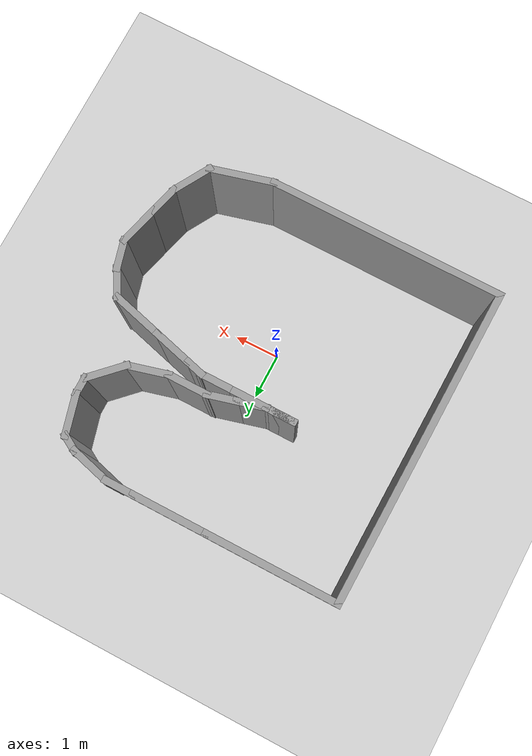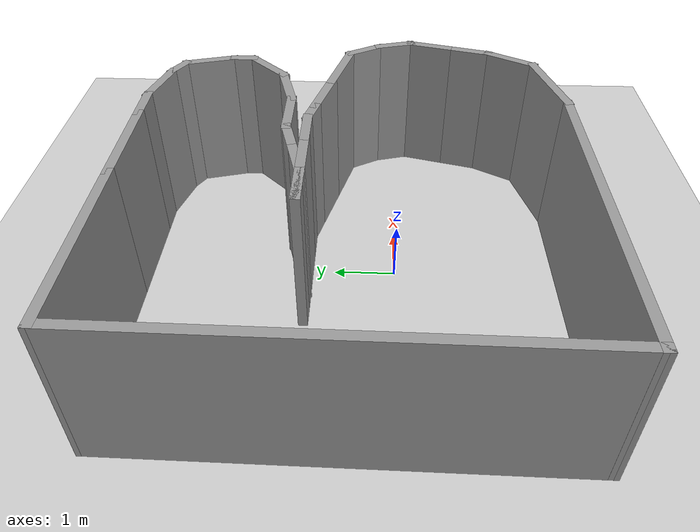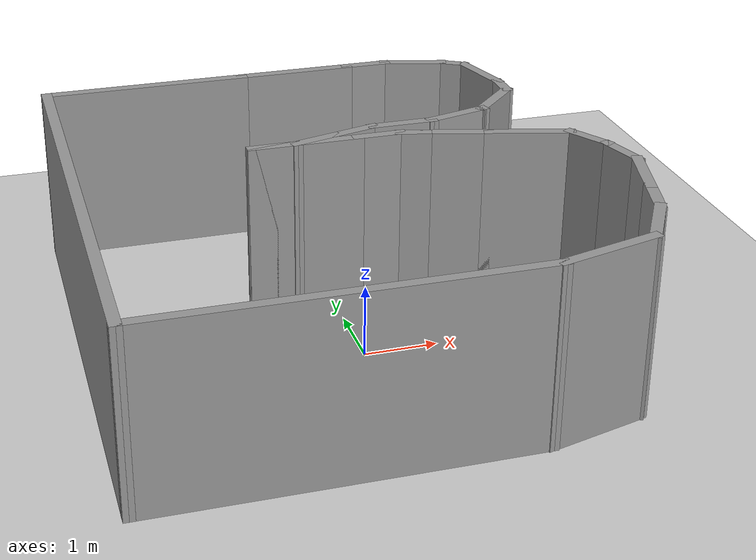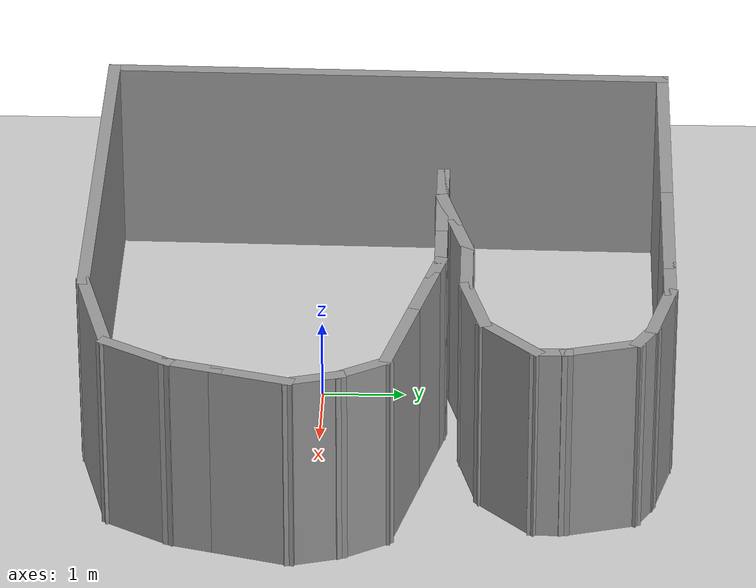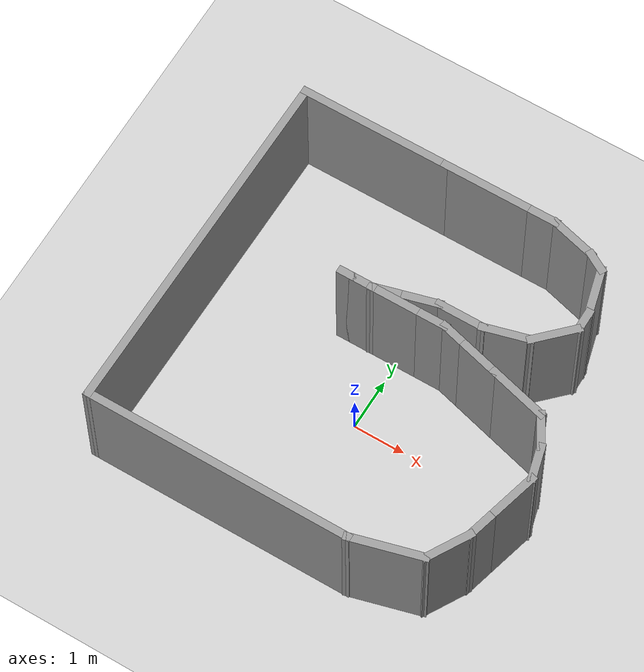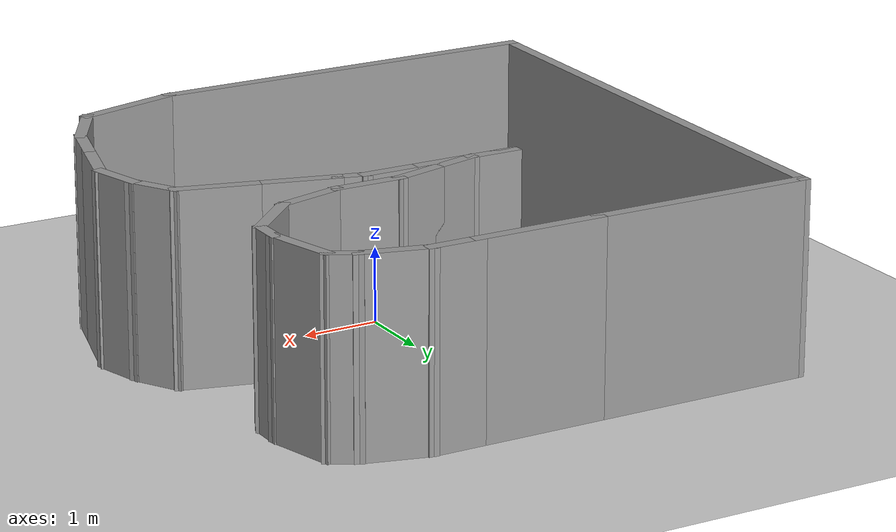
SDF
<sdf version="1.6">
 <world name="default">
  <light name="sun" type="directional">
   <pose>0 0 10 0 -0 0</pose>
   <diffuse>0.8 0.8 0.8 1</diffuse>
   <specular>0.2 0.2 0.2 1</specular>
   <attenuation>
    <range>1000</range>
    <constant>0.9</constant>
    <linear>0.01</linear>
    <quadratic>0.001</quadratic>
   </attenuation>
   <direction>-0.5 0.1 -0.9</direction>
  </light>
  <model name="ground_plane">
   <static>1</static>
   <link name="link">
    <collision name="collision">
     <geometry><plane><normal>0 0 1</normal><size>100 100</size></plane></geometry>
     <surface>
      <contact><collide_bitmask>65535</collide_bitmask></contact>
      <friction><ode><mu>100</mu><mu2>50</mu2></ode></friction>
     </surface>
    </collision>
    <visual name="visual">
     <cast_shadows>0</cast_shadows>
     <geometry><plane><normal>0 0 1</normal><size>100 100</size></plane></geometry>
     <material>
      <script><uri>file://media/materials/scripts/gazebo.material</uri><name>Gazebo/Grey</name></script>
     </material>
    </visual>
   </link>
  </model>
  <gravity>0 0 -9.8</gravity>
  <magnetic_field>6e-06 2.3e-05 -4.2e-05</magnetic_field>
  <atmosphere type="adiabatic"/>
  <physics name="default_physics" default="0" type="ode">
   <max_step_size>0.001</max_step_size>
   <real_time_factor>1</real_time_factor>
   <real_time_update_rate>1000</real_time_update_rate>
  </physics>
  <scene><ambient>0.4 0.4 0.4 1</ambient><background>0.7 0.7 0.7 1</background><shadows>1</shadows></scene>
  <audio><device>default</device></audio>
  <spherical_coordinates>
   <surface_model>EARTH_WGS84</surface_model>
   <latitude_deg>0</latitude_deg>
   <longitude_deg>0</longitude_deg>
   <elevation>0</elevation>
   <heading_deg>0</heading_deg>
  </spherical_coordinates>
  <model name="B">
   <pose>0.001135 0.699269 0 0 -0 0</pose>
   <link name="Wall_1">
    <collision name="Wall_1_Collision">
     <geometry><box><size>5.25 0.15 2.5</size></box></geometry>
     <pose>0 0 1.25 0 -0 0</pose>
    </collision>
    <visual name="Wall_1_Visual">
     <pose>0 0 1.25 0 -0 0</pose>
     <geometry><box><size>5.25 0.15 2.5</size></box></geometry>
     <material>
      <script><uri>file://media/materials/scripts/gazebo.material</uri><name>Gazebo/Grey</name></script>
      <ambient>1 1 1 1</ambient>
     </material>
     <meta><layer>0</layer></meta>
    </visual>
    <pose>-1.05995 -3.43911 0 0 -0 0</pose>
   </link>
   <link name="Wall_10">
    <collision name="Wall_10_Collision">
     <geometry><box><size>0.5 0.15 2.5</size></box></geometry>
     <pose>0 0 1.25 0 -0 0</pose>
    </collision>
    <visual name="Wall_10_Visual">
     <pose>0 0 1.25 0 -0 0</pose>
     <geometry><box><size>0.5 0.15 2.5</size></box></geometry>
     <material>
      <script><uri>file://media/materials/scripts/gazebo.material</uri><name>Gazebo/Grey</name></script>
      <ambient>1 1 1 1</ambient>
     </material>
     <meta><layer>0</layer></meta>
    </visual>
    <pose>1.08645 0.696167 0 0 -0 2.87979</pose>
   </link>
   <link name="Wall_11">
    <collision name="Wall_11_Collision">
     <geometry><box><size>0.75 0.15 2.5</size></box></geometry>
     <pose>0 0 1.25 0 -0 0</pose>
    </collision>
    <visual name="Wall_11_Visual">
     <pose>0 0 1.25 0 -0 0</pose>
     <geometry><box><size>0.75 0.15 2.5</size></box></geometry>
     <material>
      <script><uri>file://media/materials/scripts/gazebo.material</uri><name>Gazebo/Grey</name></script>
      <ambient>1 1 1 1</ambient>
     </material>
     <meta><layer>0</layer></meta>
    </visual>
    <pose>0.617414 0.741461 0 0 -0 3.14159</pose>
   </link>
   <link name="Wall_12">
    <collision name="Wall_12_Collision">
     <geometry><box><size>1 0.15 2.5</size></box></geometry>
     <pose>0 0 1.25 0 -0 0</pose>
    </collision>
    <visual name="Wall_12_Visual">
     <pose>0 0 1.25 0 -0 0</pose>
     <geometry><box><size>1 0.15 2.5</size></box></geometry>
     <material>
      <script><uri>file://media/materials/scripts/gazebo.material</uri><name>Gazebo/Grey</name></script>
      <ambient>1 1 1 1</ambient>
     </material>
     <meta><layer>0</layer></meta>
    </visual>
    <pose>-0.107586 0.741461 0 0 -0 3.14159</pose>
   </link>
   <link name="Wall_13">
    <collision name="Wall_13_Collision">
     <geometry><box><size>0.75 0.15 2.5</size></box></geometry>
     <pose>0 0 1.25 0 -0 0</pose>
    </collision>
    <visual name="Wall_13_Visual">
     <pose>0 0 1.25 0 -0 0</pose>
     <geometry><box><size>0.75 0.15 2.5</size></box></geometry>
     <material>
      <script><uri>file://media/materials/scripts/gazebo.material</uri><name>Gazebo/Grey</name></script>
      <ambient>1 1 1 1</ambient>
     </material>
     <meta><layer>0</layer></meta>
    </visual>
    <pose>-0.832587 0.741461 0 0 -0 3.14159</pose>
   </link>
   <link name="Wall_14">
    <collision name="Wall_14_Collision">
     <geometry><box><size>0.75 0.15 2.5</size></box></geometry>
     <pose>0 0 1.25 0 -0 0</pose>
    </collision>
    <visual name="Wall_14_Visual">
     <pose>0 0 1.25 0 -0 0</pose>
     <geometry><box><size>0.75 0.15 2.5</size></box></geometry>
     <material>
      <script><uri>file://media/materials/scripts/gazebo.material</uri><name>Gazebo/Grey</name></script>
      <ambient>1 1 1 1</ambient>
     </material>
     <meta><layer>0</layer></meta>
    </visual>
    <pose>-0.832587 0.741461 0 0 -0 0</pose>
   </link>
   <link name="Wall_15">
    <collision name="Wall_15_Collision">
     <geometry><box><size>0.75 0.15 2.5</size></box></geometry>
     <pose>0 0 1.25 0 -0 0</pose>
    </collision>
    <visual name="Wall_15_Visual">
     <pose>0 0 1.25 0 -0 0</pose>
     <geometry><box><size>0.75 0.15 2.5</size></box></geometry>
     <material>
      <script><uri>file://media/materials/scripts/gazebo.material</uri><name>Gazebo/Grey</name></script>
      <ambient>1 1 1 1</ambient>
     </material>
     <meta><layer>0</layer></meta>
    </visual>
    <pose>-0.242808 0.819106 0 0 -0 0.261799</pose>
   </link>
   <link name="Wall_16">
    <collision name="Wall_16_Collision">
     <geometry><box><size>0.75 0.15 2.5</size></box></geometry>
     <pose>0 0 1.25 0 -0 0</pose>
    </collision>
    <visual name="Wall_16_Visual">
     <pose>0 0 1.25 0 -0 0</pose>
     <geometry><box><size>0.75 0.15 2.5</size></box></geometry>
     <material>
      <script><uri>file://media/materials/scripts/gazebo.material</uri><name>Gazebo/Grey</name></script>
      <ambient>1 1 1 1</ambient>
     </material>
     <meta><layer>0</layer></meta>
    </visual>
    <pose>0.336748 0.974398 0 0 -0 0.261799</pose>
   </link>
   <link name="Wall_17">
    <collision name="Wall_17_Collision">
     <geometry><box><size>1 0.15 2.5</size></box></geometry>
     <pose>0 0 1.25 0 -0 0</pose>
    </collision>
    <visual name="Wall_17_Visual">
     <pose>0 0 1.25 0 -0 0</pose>
     <geometry><box><size>1 0.15 2.5</size></box></geometry>
     <material>
      <script><uri>file://media/materials/scripts/gazebo.material</uri><name>Gazebo/Grey</name></script>
      <ambient>1 1 1 1</ambient>
     </material>
     <meta><layer>0</layer></meta>
    </visual>
    <pose>1.05153 1.05204 0 0 -0 0</pose>
   </link>
   <link name="Wall_18">
    <collision name="Wall_18_Collision">
     <geometry><box><size>1 0.15 2.5</size></box></geometry>
     <pose>0 0 1.25 0 -0 0</pose>
    </collision>
    <visual name="Wall_18_Visual">
     <pose>0 0 1.25 0 -0 0</pose>
     <geometry><box><size>1 0.15 2.5</size></box></geometry>
     <material>
      <script><uri>file://media/materials/scripts/gazebo.material</uri><name>Gazebo/Grey</name></script>
      <ambient>1 1 1 1</ambient>
     </material>
     <meta><layer>0</layer></meta>
    </visual>
    <pose>1.88704 1.16204 0 0 -0 0.261799</pose>
   </link>
   <link name="Wall_19">
    <collision name="Wall_19_Collision">
     <geometry><box><size>1 0.15 2.5</size></box></geometry>
     <pose>0 0 1.25 0 -0 0</pose>
    </collision>
    <visual name="Wall_19_Visual">
     <pose>0 0 1.25 0 -0 0</pose>
     <geometry><box><size>1 0.15 2.5</size></box></geometry>
     <material>
      <script><uri>file://media/materials/scripts/gazebo.material</uri><name>Gazebo/Grey</name></script>
      <ambient>1 1 1 1</ambient>
     </material>
     <meta><layer>0</layer></meta>
    </visual>
    <pose>2.59808 1.57256 0 0 -0 0.785398</pose>
   </link>
   <link name="Wall_2">
    <collision name="Wall_2_Collision">
     <geometry><box><size>1.5 0.15 2.5</size></box></geometry>
     <pose>0 0 1.25 0 -0 0</pose>
    </collision>
    <visual name="Wall_2_Visual">
     <pose>0 0 1.25 0 -0 0</pose>
     <geometry><box><size>1.5 0.15 2.5</size></box></geometry>
     <material>
      <script><uri>file://media/materials/scripts/gazebo.material</uri><name>Gazebo/Grey</name></script>
      <ambient>1 1 1 1</ambient>
     </material>
     <meta><layer>0</layer></meta>
    </visual>
    <pose>2.14205 -3.26441 0 0 -0 0.261799</pose>
   </link>
   <link name="Wall_20">
    <collision name="Wall_20_Collision">
     <geometry><box><size>0.5 0.15 2.5</size></box></geometry>
     <pose>0 0 1.25 0 -0 0</pose>
    </collision>
    <visual name="Wall_20_Visual">
     <pose>0 0 1.25 0 -0 0</pose>
     <geometry><box><size>0.5 0.15 2.5</size></box></geometry>
     <material>
      <script><uri>file://media/materials/scripts/gazebo.material</uri><name>Gazebo/Grey</name></script>
      <ambient>1 1 1 1</ambient>
     </material>
     <meta><layer>0</layer></meta>
    </visual>
    <pose>2.8986 2.04808 0 0 -0 1.5708</pose>
   </link>
   <link name="Wall_21">
    <collision name="Wall_21_Collision">
     <geometry><box><size>1 0.15 2.5</size></box></geometry>
     <pose>0 0 1.25 0 -0 0</pose>
    </collision>
    <visual name="Wall_21_Visual">
     <pose>0 0 1.25 0 -0 0</pose>
     <geometry><box><size>1 0.15 2.5</size></box></geometry>
     <material>
      <script><uri>file://media/materials/scripts/gazebo.material</uri><name>Gazebo/Grey</name></script>
      <ambient>1 1 1 1</ambient>
     </material>
     <meta><layer>0</layer></meta>
    </visual>
    <pose>2.7886 2.6336 0 0 -0 1.8326</pose>
   </link>
   <link name="Wall_22">
    <collision name="Wall_22_Collision">
     <geometry><box><size>0.5 0.15 2.5</size></box></geometry>
     <pose>0 0 1.25 0 -0 0</pose>
    </collision>
    <visual name="Wall_22_Visual">
     <pose>0 0 1.25 0 -0 0</pose>
     <geometry><box><size>0.5 0.15 2.5</size></box></geometry>
     <material>
      <script><uri>file://media/materials/scripts/gazebo.material</uri><name>Gazebo/Grey</name></script>
      <ambient>1 1 1 1</ambient>
     </material>
     <meta><layer>0</layer></meta>
    </visual>
    <pose>2.52705 3.13162 0 0 -0 2.61799</pose>
   </link>
   <link name="Wall_23">
    <collision name="Wall_23_Collision">
     <geometry><box><size>1 0.15 2.5</size></box></geometry>
     <pose>0 0 1.25 0 -0 0</pose>
    </collision>
    <visual name="Wall_23_Visual">
     <pose>0 0 1.25 0 -0 0</pose>
     <geometry><box><size>1 0.15 2.5</size></box></geometry>
     <material>
      <script><uri>file://media/materials/scripts/gazebo.material</uri><name>Gazebo/Grey</name></script>
      <ambient>1 1 1 1</ambient>
     </material>
     <meta><layer>0</layer></meta>
    </visual>
    <pose>1.96498 3.32912 0 0 -0 2.87979</pose>
   </link>
   <link name="Wall_24">
    <collision name="Wall_24_Collision">
     <geometry><box><size>0.75 0.15 2.5</size></box></geometry>
     <pose>0 0 1.25 0 -0 0</pose>
    </collision>
    <visual name="Wall_24_Visual">
     <pose>0 0 1.25 0 -0 0</pose>
     <geometry><box><size>0.75 0.15 2.5</size></box></geometry>
     <material>
      <script><uri>file://media/materials/scripts/gazebo.material</uri><name>Gazebo/Grey</name></script>
      <ambient>1 1 1 1</ambient>
     </material>
     <meta><layer>0</layer></meta>
    </visual>
    <pose>1.25446 3.43911 0 0 -0 3.14159</pose>
   </link>
   <link name="Wall_25">
    <collision name="Wall_25_Collision">
     <geometry><box><size>1.75 0.15 2.5</size></box></geometry>
     <pose>0 0 1.25 0 -0 0</pose>
    </collision>
    <visual name="Wall_25_Visual">
     <pose>0 0 1.25 0 -0 0</pose>
     <geometry><box><size>1.75 0.15 2.5</size></box></geometry>
     <material>
      <script><uri>file://media/materials/scripts/gazebo.material</uri><name>Gazebo/Grey</name></script>
      <ambient>1 1 1 1</ambient>
     </material>
     <meta><layer>0</layer></meta>
    </visual>
    <pose>0.15446 3.43911 0 0 -0 3.14159</pose>
   </link>
   <link name="Wall_26">
    <collision name="Wall_26_Collision">
     <geometry><box><size>3 0.15 2.5</size></box></geometry>
     <pose>0 0 1.25 0 -0 0</pose>
    </collision>
    <visual name="Wall_26_Visual">
     <pose>0 0 1.25 0 -0 0</pose>
     <geometry><box><size>3 0.15 2.5</size></box></geometry>
     <material>
      <script><uri>file://media/materials/scripts/gazebo.material</uri><name>Gazebo/Grey</name></script>
      <ambient>1 1 1 1</ambient>
     </material>
     <meta><layer>0</layer></meta>
    </visual>
    <pose>-2.07054 3.43911 0 0 -0 3.14159</pose>
   </link>
   <link name="Wall_27">
    <collision name="Wall_27_Collision">
     <geometry><box><size>7.02918 0.15 2.5</size></box></geometry>
     <pose>0 0 1.25 0 -0 0</pose>
    </collision>
    <visual name="Wall_27_Visual">
     <pose>0 0 1.25 0 -0 0</pose>
     <geometry><box><size>7.02918 0.15 2.5</size></box></geometry>
     <material>
      <script><uri>file://media/materials/scripts/gazebo.material</uri><name>Gazebo/Grey</name></script>
      <ambient>1 1 1 1</ambient>
     </material>
     <meta><layer>0</layer></meta>
    </visual>
    <pose>-3.55275 0 0 0 -0 -1.58743</pose>
   </link>
   <link name="Wall_3">
    <collision name="Wall_3_Collision">
     <geometry><box><size>1 0.15 2.5</size></box></geometry>
     <pose>0 0 1.25 0 -0 0</pose>
    </collision>
    <visual name="Wall_3_Visual">
     <pose>0 0 1.25 0 -0 0</pose>
     <geometry><box><size>1 0.15 2.5</size></box></geometry>
     <material>
      <script><uri>file://media/materials/scripts/gazebo.material</uri><name>Gazebo/Grey</name></script>
      <ambient>1 1 1 1</ambient>
     </material>
     <meta><layer>0</layer></meta>
    </visual>
    <pose>3.00655 -2.72165 0 0 -0 1.0472</pose>
   </link>
   <link name="Wall_4">
    <collision name="Wall_4_Collision">
     <geometry><box><size>0.75 0.15 2.5</size></box></geometry>
     <pose>0 0 1.25 0 -0 0</pose>
    </collision>
    <visual name="Wall_4_Visual">
     <pose>0 0 1.25 0 -0 0</pose>
     <geometry><box><size>0.75 0.15 2.5</size></box></geometry>
     <material>
      <script><uri>file://media/materials/scripts/gazebo.material</uri><name>Gazebo/Grey</name></script>
      <ambient>1 1 1 1</ambient>
     </material>
     <meta><layer>0</layer></meta>
    </visual>
    <pose>3.29669 -2.06381 0 0 -0 1.309</pose>
   </link>
   <link name="Wall_5">
    <collision name="Wall_5_Collision">
     <geometry><box><size>1 0.15 2.5</size></box></geometry>
     <pose>0 0 1.25 0 -0 0</pose>
    </collision>
    <visual name="Wall_5_Visual">
     <pose>0 0 1.25 0 -0 0</pose>
     <geometry><box><size>1 0.15 2.5</size></box></geometry>
     <material>
      <script><uri>file://media/materials/scripts/gazebo.material</uri><name>Gazebo/Grey</name></script>
      <ambient>1 1 1 1</ambient>
     </material>
     <meta><layer>0</layer></meta>
    </visual>
    <pose>3.48434 -1.36351 0 0 -0 1.309</pose>
   </link>
   <link name="Wall_6">
    <collision name="Wall_6_Collision">
     <geometry><box><size>0.75 0.15 2.5</size></box></geometry>
     <pose>0 0 1.25 0 -0 0</pose>
    </collision>
    <visual name="Wall_6_Visual">
     <pose>0 0 1.25 0 -0 0</pose>
     <geometry><box><size>0.75 0.15 2.5</size></box></geometry>
     <material>
      <script><uri>file://media/materials/scripts/gazebo.material</uri><name>Gazebo/Grey</name></script>
      <ambient>1 1 1 1</ambient>
     </material>
     <meta><layer>0</layer></meta>
    </visual>
    <pose>3.51669 -0.663216 0 0 -0 1.8326</pose>
   </link>
   <link name="Wall_7">
    <collision name="Wall_7_Collision">
     <geometry><box><size>0.75 0.15 2.5</size></box></geometry>
     <pose>0 0 1.25 0 -0 0</pose>
    </collision>
    <visual name="Wall_7_Visual">
     <pose>0 0 1.25 0 -0 0</pose>
     <geometry><box><size>0.75 0.15 2.5</size></box></geometry>
     <material>
      <script><uri>file://media/materials/scripts/gazebo.material</uri><name>Gazebo/Grey</name></script>
      <ambient>1 1 1 1</ambient>
     </material>
     <meta><layer>0</layer></meta>
    </visual>
    <pose>3.28904 -0.113631 0 0 -0 2.0944</pose>
   </link>
   <link name="Wall_8">
    <collision name="Wall_8_Collision">
     <geometry><box><size>1.25 0.15 2.5</size></box></geometry>
     <pose>0 0 1.25 0 -0 0</pose>
    </collision>
    <visual name="Wall_8_Visual">
     <pose>0 0 1.25 0 -0 0</pose>
     <geometry><box><size>1.25 0.15 2.5</size></box></geometry>
     <material>
      <script><uri>file://media/materials/scripts/gazebo.material</uri><name>Gazebo/Grey</name></script>
      <ambient>1 1 1 1</ambient>
     </material>
     <meta><layer>0</layer></meta>
    </visual>
    <pose>2.60778 0.288527 0 0 -0 2.87979</pose>
   </link>
   <link name="Wall_9">
    <collision name="Wall_9_Collision">
     <geometry><box><size>1 0.15 2.5</size></box></geometry>
     <pose>0 0 1.25 0 -0 0</pose>
    </collision>
    <visual name="Wall_9_Visual">
     <pose>0 0 1.25 0 -0 0</pose>
     <geometry><box><size>1 0.15 2.5</size></box></geometry>
     <material>
      <script><uri>file://media/materials/scripts/gazebo.material</uri><name>Gazebo/Grey</name></script>
      <ambient>1 1 1 1</ambient>
     </material>
     <meta><layer>0</layer></meta>
    </visual>
    <pose>1.66601 0.540876 0 0 -0 2.87979</pose>
   </link>
   <static>1</static>
  </model>
 </world>
</sdf>
